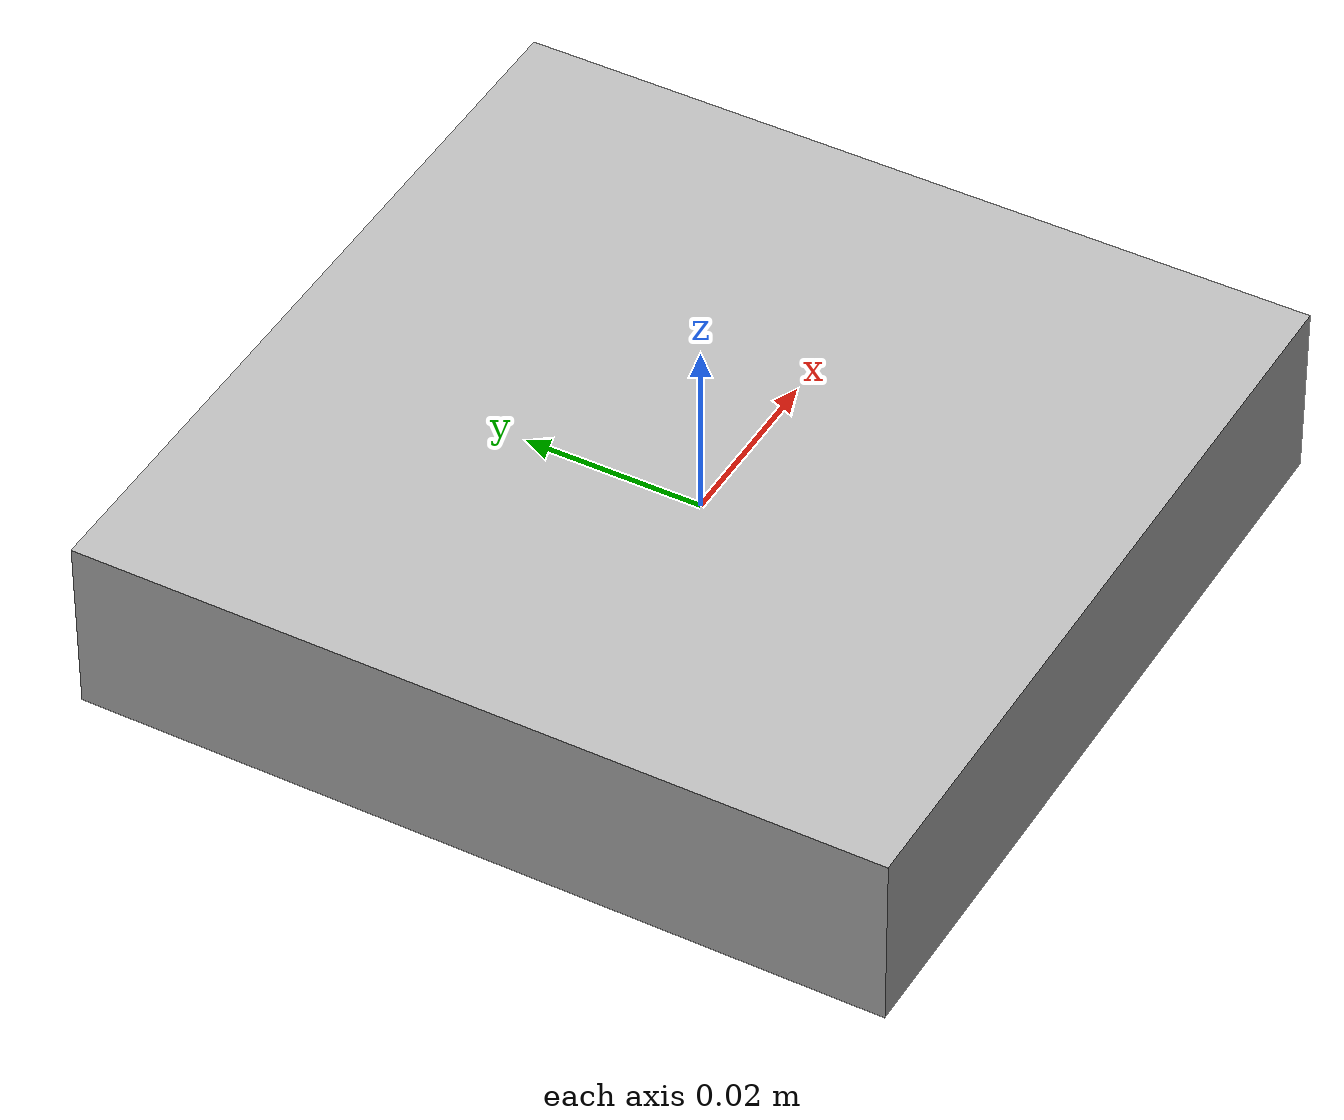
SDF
<?xml version='1.0'?>
<sdf version='1.4'>
  <model name="mark_ar_track2">
    <link name='link'>
      <pose>0 0 0 0 0 0</pose>

      <inertial>
          <mass>0.5</mass>
          <inertia>
            <ixx>0.0001</ixx>
            <ixy>0</ixy>
            <ixz>0</ixz>
            <iyy>0.0001</iyy>
            <iyz>0</iyz>
            <izz>0.0001</izz>
          </inertia>
        </inertial>

      <collision name='collision'>
        <geometry>
                <box>
                  <size>0.04 0.04 0.005</size>
                </box>
        </geometry>

	     <surface>
                   <friction>
                     <ode>
                       <mu>50.0</mu>
                       <mu2>50.0</mu2>
                        <minDepth>0.003</minDepth>
                        <maxVel>0</maxVel>
                        <kp>1000000.0</kp>
                        <kd>1.0</kd>
                     </ode>
                   </friction>
           </surface>
      </collision>

      <visual name='visual'>
        <geometry>
                <box>
                  <size>0.09 0.09 0.02</size>
                </box>
        </geometry>
        <material>
          <script>
            <uri>model://mark_ar_track2/materials/scripts</uri>
            <uri>model://mark_ar_track2/materials/textures</uri>
            <name>Mark_ar_track2/Diffuse</name>
          </script>
        </material>
      </visual>
    </link>
  </model>
</sdf>
